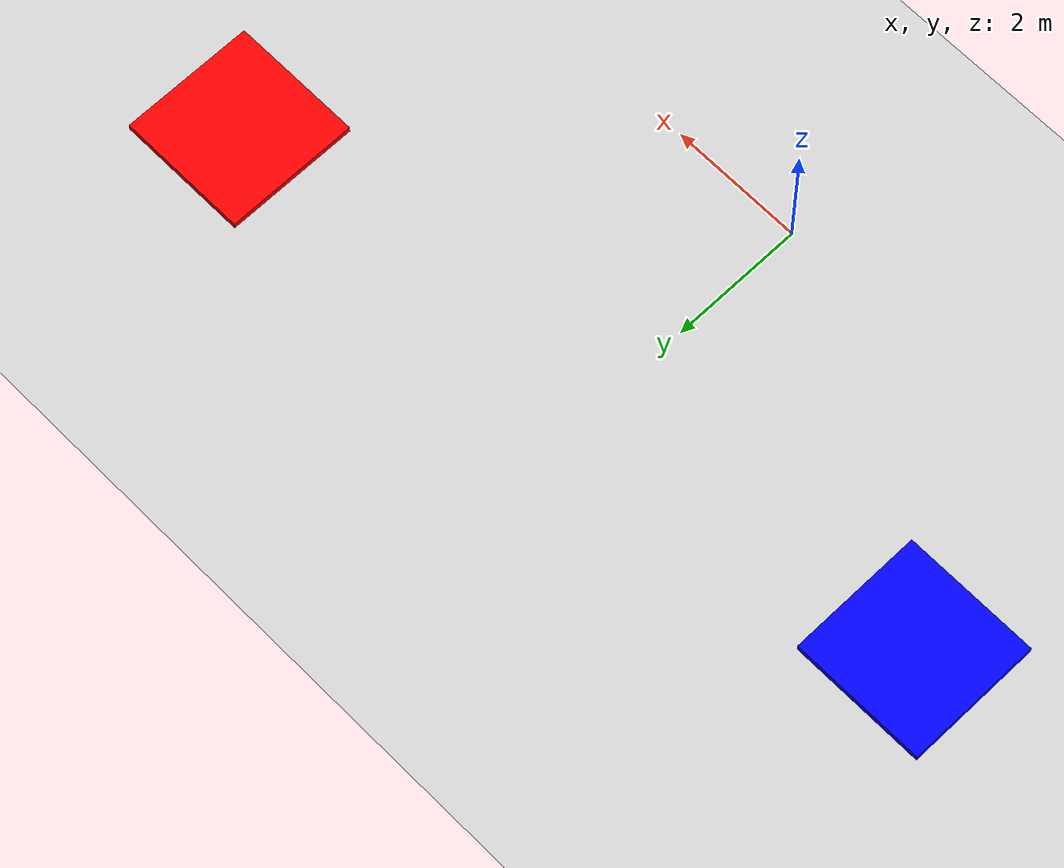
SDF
<?xml version="1.0" ?>
<sdf version="1.6">
  <world name="ahtovik_sar_world">
    <include><uri>model://sun</uri></include>
    <include><uri>model://ground_plane</uri></include>
    <model name="victim_zone">
      <static>true</static>
      <pose>6 4 0.05 0 0 0</pose>
      <link name="link">
        <visual name="visual"><geometry><box><size>2 2 0.1</size></box></geometry><material><ambient>1 0 0 1</ambient></material></visual>
      </link>
    </model>
    <model name="supply_zone">
      <static>true</static>
      <pose>-5 3 0.05 0 0 0</pose>
      <link name="link">
        <visual name="visual"><geometry><box><size>2 2 0.1</size></box></geometry><material><ambient>0 0 1 1</ambient></material></visual>
      </link>
    </model>
  </world>
</sdf>
